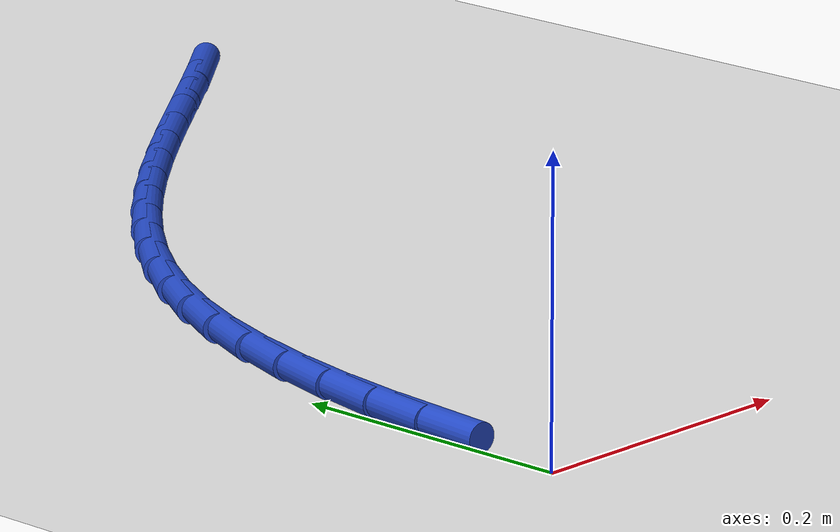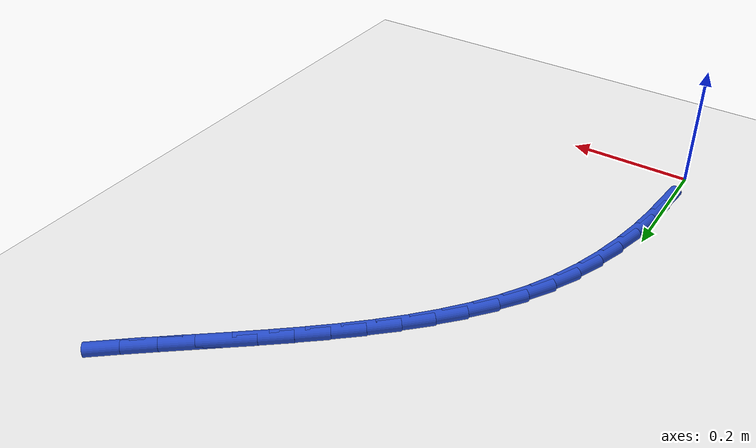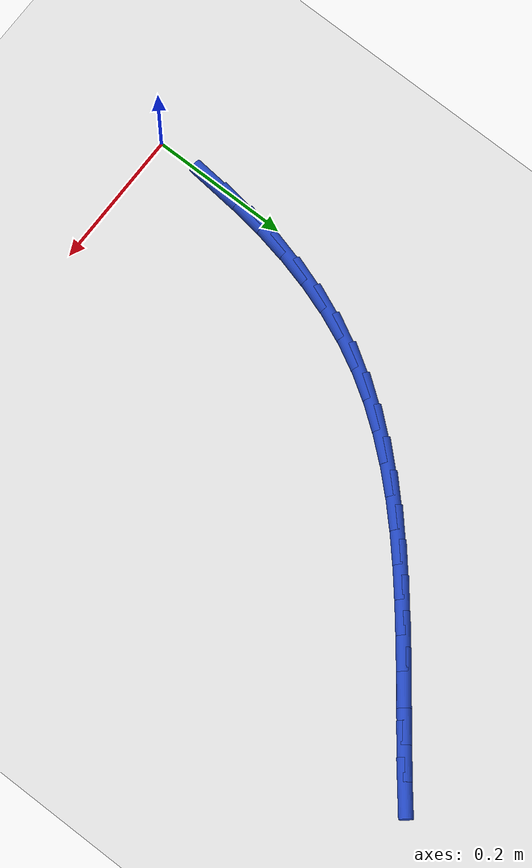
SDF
<sdf version="1.6">
 <world name="default">
  <model name="ground_plane">
   <static>1</static>
   <link name="link">
    <collision name="collision">
     <geometry><plane><normal>0 0 1</normal><size>100 100</size></plane></geometry>
     <surface><friction><ode><mu>100</mu><mu2>50</mu2></ode></friction></surface>
    </collision>
    <visual name="visual">
     <cast_shadows>0</cast_shadows>
     <geometry><plane><normal>0 0 1</normal><size>100 100</size></plane></geometry>
     <material>
      <script><uri>file://media/materials/scripts/gazebo.material</uri><name>Gazebo/WhiteGlow</name></script>
     </material>
    </visual>
   </link>
  </model>
  <model name="line">
   <link name="link_2">
    <pose>0.00256746964531114 0.09560449010683651 0.01 0 1.57 1.4763867543394842</pose>
    <collision name="collision">
     <geometry><cylinder><radius>0.01</radius><length>0.08</length></cylinder></geometry>
    </collision>
    <visual name="visual">
     <material>
      <script><name>Gazebo/Blue</name><uri>file://media/materials/scripts/gazebo.material</uri></script>
     </material>
     <geometry><cylinder><radius>0.01</radius><length>0.08</length></cylinder></geometry>
    </visual>
   </link>
   <link name="link_3">
    <pose>0.007065199851168378 0.1431034791887835 0.01 0 1.57 1.4257564595323668</pose>
    <collision name="collision">
     <geometry><cylinder><radius>0.01</radius><length>0.08</length></cylinder></geometry>
    </collision>
    <visual name="visual">
     <material>
      <script><name>Gazebo/Blue</name><uri>file://media/materials/scripts/gazebo.material</uri></script>
     </material>
     <geometry><cylinder><radius>0.01</radius><length>0.08</length></cylinder></geometry>
    </visual>
   </link>
   <link name="link_4">
    <pose>0.013919874954645504 0.1900322403509849 0.01 0 1.57 1.3701513452137462</pose>
    <collision name="collision">
     <geometry><cylinder><radius>0.01</radius><length>0.08</length></cylinder></geometry>
    </collision>
    <visual name="visual">
     <material>
      <script><name>Gazebo/Blue</name><uri>file://media/materials/scripts/gazebo.material</uri></script>
     </material>
     <geometry><cylinder><radius>0.01</radius><length>0.08</length></cylinder></geometry>
    </visual>
   </link>
   <link name="link_5">
    <pose>0.0232922059373566 0.23611473063936744 0.01 0 1.57 1.308921094758801</pose>
    <collision name="collision">
     <geometry><cylinder><radius>0.01</radius><length>0.08</length></cylinder></geometry>
    </collision>
    <visual name="visual">
     <material>
      <script><name>Gazebo/Blue</name><uri>file://media/materials/scripts/gazebo.material</uri></script>
     </material>
     <geometry><cylinder><radius>0.01</radius><length>0.08</length></cylinder></geometry>
    </visual>
   </link>
   <link name="link_6">
    <pose>0.035342903780915744 0.2810749070998575 0.01 0 1.57 1.2414381184219754</pose>
    <collision name="collision">
     <geometry><cylinder><radius>0.01</radius><length>0.08</length></cylinder></geometry>
    </collision>
    <visual name="visual">
     <material>
      <script><name>Gazebo/Blue</name><uri>file://media/materials/scripts/gazebo.material</uri></script>
     </material>
     <geometry><cylinder><radius>0.01</radius><length>0.08</length></cylinder></geometry>
    </visual>
   </link>
   <link name="link_7">
    <pose>0.050232679466936984 0.3246367267783816 0.01 0 1.57 1.1671594621937802</pose>
    <collision name="collision">
     <geometry><cylinder><radius>0.01</radius><length>0.08</length></cylinder></geometry>
    </collision>
    <visual name="visual">
     <material>
      <script><name>Gazebo/Blue</name><uri>file://media/materials/scripts/gazebo.material</uri></script>
     </material>
     <geometry><cylinder><radius>0.01</radius><length>0.08</length></cylinder></geometry>
    </visual>
   </link>
   <link name="link_8">
    <pose>0.06812224397703441 0.3665241467208663 0.01 0 1.57 1.0862252213850343</pose>
    <collision name="collision">
     <geometry><cylinder><radius>0.01</radius><length>0.08</length></cylinder></geometry>
    </collision>
    <visual name="visual">
     <material>
      <script><name>Gazebo/Blue</name><uri>file://media/materials/scripts/gazebo.material</uri></script>
     </material>
     <geometry><cylinder><radius>0.01</radius><length>0.08</length></cylinder></geometry>
    </visual>
   </link>
   <link name="link_9">
    <pose>0.08915550299716676 0.40647830576742955 0.01 0 1.57 1.0063533597344037</pose>
    <collision name="collision">
     <geometry><cylinder><radius>0.01</radius><length>0.08</length></cylinder></geometry>
    </collision>
    <visual name="visual">
     <material>
      <script><name>Gazebo/Blue</name><uri>file://media/materials/scripts/gazebo.material</uri></script>
     </material>
     <geometry><cylinder><radius>0.01</radius><length>0.08</length></cylinder></geometry>
    </visual>
   </link>
   <link name="link_10">
    <pose>0.1132265105070675 0.4444957920333901 0.01 0 1.57 0.9342763934615821</pose>
    <collision name="collision">
     <geometry><cylinder><radius>0.01</radius><length>0.08</length></cylinder></geometry>
    </collision>
    <visual name="visual">
     <material>
      <script><name>Gazebo/Blue</name><uri>file://media/materials/scripts/gazebo.material</uri></script>
     </material>
     <geometry><cylinder><radius>0.01</radius><length>0.08</length></cylinder></geometry>
    </visual>
   </link>
   <link name="link_11">
    <pose>0.1400378018888805 0.4807690029310337 0.01 0 1.57 0.8708021590368316</pose>
    <collision name="collision">
     <geometry><cylinder><radius>0.01</radius><length>0.08</length></cylinder></geometry>
    </collision>
    <visual name="visual">
     <material>
      <script><name>Gazebo/Blue</name><uri>file://media/materials/scripts/gazebo.material</uri></script>
     </material>
     <geometry><cylinder><radius>0.01</radius><length>0.08</length></cylinder></geometry>
    </visual>
   </link>
   <link name="link_12">
    <pose>0.1692870330040851 0.5154953247119691 0.01 0 1.57 0.8161472947909374</pose>
    <collision name="collision">
     <geometry><cylinder><radius>0.01</radius><length>0.08</length></cylinder></geometry>
    </collision>
    <visual name="visual">
     <material>
      <script><name>Gazebo/Blue</name><uri>file://media/materials/scripts/gazebo.material</uri></script>
     </material>
     <geometry><cylinder><radius>0.01</radius><length>0.08</length></cylinder></geometry>
    </visual>
   </link>
   <link name="link_13">
    <pose>0.20067185971416074 0.5488721436278053 0.01 0 1.57 0.7702200249914737</pose>
    <collision name="collision">
     <geometry><cylinder><radius>0.01</radius><length>0.08</length></cylinder></geometry>
    </collision>
    <visual name="visual">
     <material>
      <script><name>Gazebo/Blue</name><uri>file://media/materials/scripts/gazebo.material</uri></script>
     </material>
     <geometry><cylinder><radius>0.01</radius><length>0.08</length></cylinder></geometry>
    </visual>
   </link>
   <link name="link_14">
    <pose>0.23388993788058682 0.5810968459301515 0.01 0 1.57 0.7327496721935243</pose>
    <collision name="collision">
     <geometry><cylinder><radius>0.01</radius><length>0.08</length></cylinder></geometry>
    </collision>
    <visual name="visual">
     <material>
      <script><name>Gazebo/Blue</name><uri>file://media/materials/scripts/gazebo.material</uri></script>
     </material>
     <geometry><cylinder><radius>0.01</radius><length>0.08</length></cylinder></geometry>
    </visual>
   </link>
   <link name="link_15">
    <pose>0.2686389233648427 0.6123668178706162 0.01 0 1.57 0.7033910940298831</pose>
    <collision name="collision">
     <geometry><cylinder><radius>0.01</radius><length>0.08</length></cylinder></geometry>
    </collision>
    <visual name="visual">
     <material>
      <script><name>Gazebo/Blue</name><uri>file://media/materials/scripts/gazebo.material</uri></script>
     </material>
     <geometry><cylinder><radius>0.01</radius><length>0.08</length></cylinder></geometry>
    </visual>
   </link>
   <link name="link_16">
    <pose>0.3046164720284079 0.6428794457008087 0.01 0 1.57 0.6817998807367432</pose>
    <collision name="collision">
     <geometry><cylinder><radius>0.01</radius><length>0.08</length></cylinder></geometry>
    </collision>
    <visual name="visual">
     <material>
      <script><name>Gazebo/Blue</name><uri>file://media/materials/scripts/gazebo.material</uri></script>
     </material>
     <geometry><cylinder><radius>0.01</radius><length>0.08</length></cylinder></geometry>
    </visual>
   </link>
   <link name="link_17">
    <pose>0.34152023973276174 0.6728321156723378 0.01 0 1.57 0.6676819469219742</pose>
    <collision name="collision">
     <geometry><cylinder><radius>0.01</radius><length>0.08</length></cylinder></geometry>
    </collision>
    <visual name="visual">
     <material>
      <script><name>Gazebo/Blue</name><uri>file://media/materials/scripts/gazebo.material</uri></script>
     </material>
     <geometry><cylinder><radius>0.01</radius><length>0.08</length></cylinder></geometry>
    </visual>
   </link>
   <link name="link_18">
    <pose>0.37904788233938375 0.7024222140368128 0.01 0 1.57 0.6608236430765778</pose>
    <collision name="collision">
     <geometry><cylinder><radius>0.01</radius><length>0.08</length></cylinder></geometry>
    </collision>
    <visual name="visual">
     <material>
      <script><name>Gazebo/Blue</name><uri>file://media/materials/scripts/gazebo.material</uri></script>
     </material>
     <geometry><cylinder><radius>0.01</radius><length>0.08</length></cylinder></geometry>
    </visual>
   </link>
   <link name="link_19">
    <pose>0.4168970557097531 0.7318471270458419 0.01 0 1.57 0.6611080759831992</pose>
    <collision name="collision">
     <geometry><cylinder><radius>0.01</radius><length>0.08</length></cylinder></geometry>
    </collision>
    <visual name="visual">
     <material>
      <script><name>Gazebo/Blue</name><uri>file://media/materials/scripts/gazebo.material</uri></script>
     </material>
     <geometry><cylinder><radius>0.01</radius><length>0.08</length></cylinder></geometry>
    </visual>
   </link>
   <link name="link_20">
    <pose>0.45476541570534956 0.7613042409510349 0.01 0 1.57 0.6685216754027642</pose>
    <collision name="collision">
     <geometry><cylinder><radius>0.01</radius><length>0.08</length></cylinder></geometry>
    </collision>
    <visual name="visual">
     <material>
      <script><name>Gazebo/Blue</name><uri>file://media/materials/scripts/gazebo.material</uri></script>
     </material>
     <geometry><cylinder><radius>0.01</radius><length>0.08</length></cylinder></geometry>
    </visual>
   </link>
   <link name="link_21">
    <pose>0.4923506181876522 0.7909909420040002 0.01 0 1.57 0.6831530600610272</pose>
    <collision name="collision">
     <geometry><cylinder><radius>0.01</radius><length>0.08</length></cylinder></geometry>
    </collision>
    <visual name="visual">
     <material>
      <script><name>Gazebo/Blue</name><uri>file://media/materials/scripts/gazebo.material</uri></script>
     </material>
     <geometry><cylinder><radius>0.01</radius><length>0.08</length></cylinder></geometry>
    </visual>
   </link>
  </model>
 </world>
</sdf>
